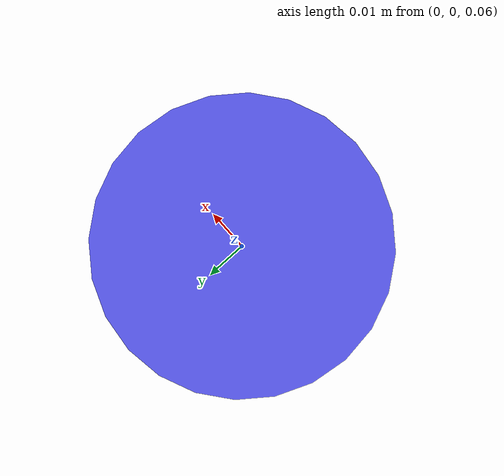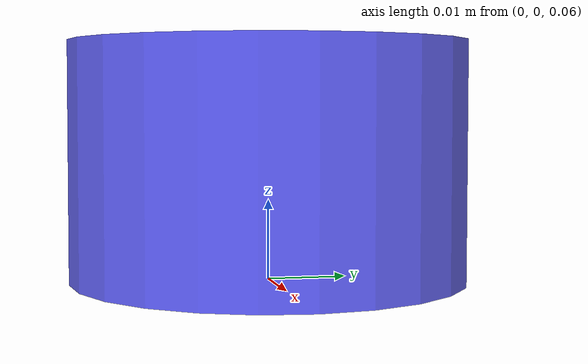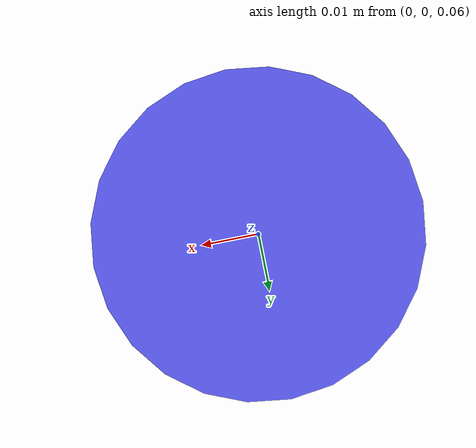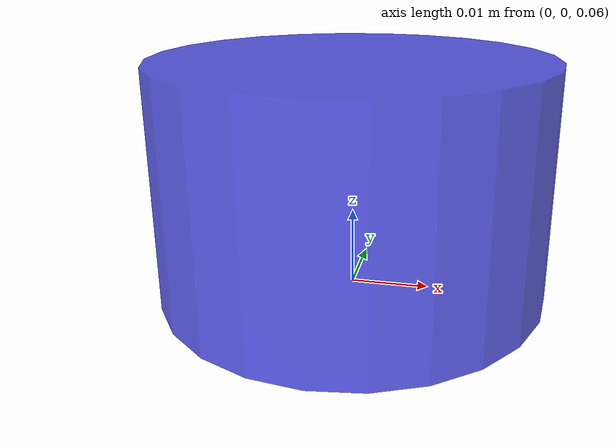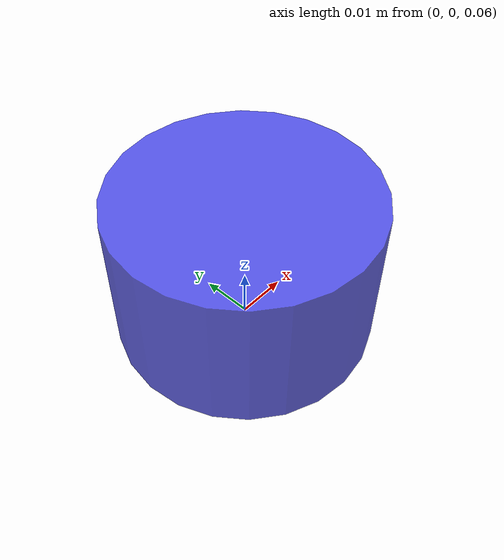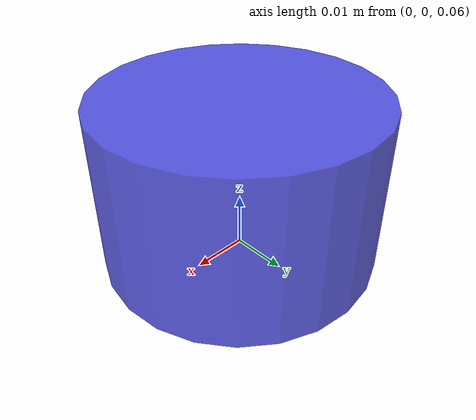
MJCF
<!-- Simple mocap-controlled pusher arm (easy difficulty).
     ee_frame matches the SO-101 end-effector body name. -->
<mujoco model="simple_arm">
  <worldbody>
    <!-- Heavy dynamic body; does the actual pushing.
         Mass=2kg ensures contact forces push objects rather than deflecting. -->
    <body name="ee_frame" pos="0.0 0 0.075">
      <joint name="joint1" type="free"/>
      <geom type="cylinder" size="0.025 0.015" rgba="0.2 0.2 0.9 0.8"
            contype="1" conaffinity="1" mass="2.0"/>
    </body>
  </worldbody>
</mujoco>
